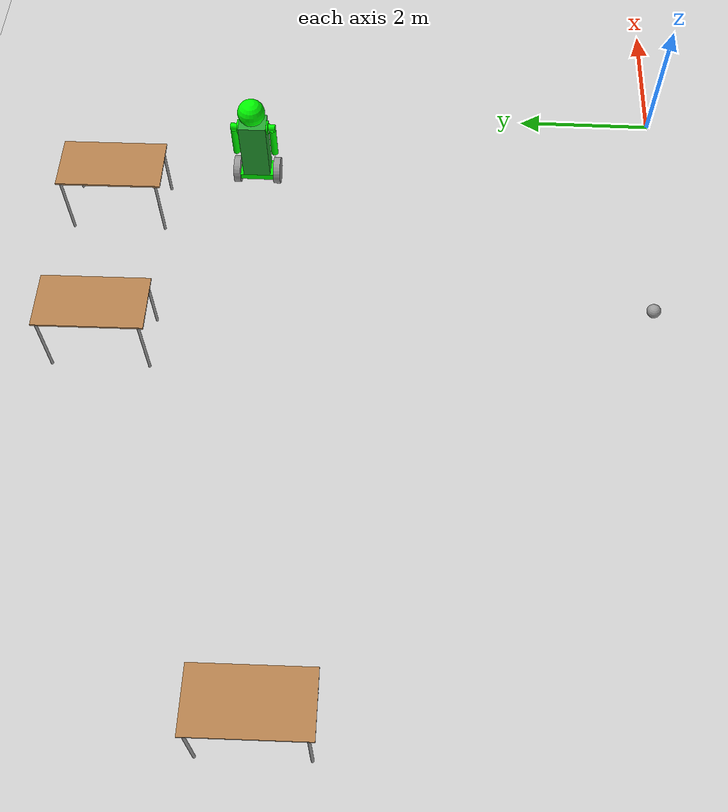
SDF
<sdf version="1.6">
 <world name="default">
  <model name="ground_plane">
   <static>1</static>
   <link name="link">
    <collision name="collision">
     <geometry><plane><normal>0 0 1</normal><size>100 100</size></plane></geometry>
     <surface>
      <contact><collide_bitmask>65535</collide_bitmask></contact>
      <friction><ode><mu>100</mu><mu2>50</mu2></ode></friction>
     </surface>
    </collision>
    <visual name="visual">
     <cast_shadows>0</cast_shadows>
     <geometry><plane><normal>0 0 1</normal><size>100 100</size></plane></geometry>
     <material>
      <script><uri>file://media/materials/scripts/gazebo.material</uri><name>Gazebo/Grey</name></script>
     </material>
    </visual>
   </link>
  </model>
  <model name="table_clone_0">
   <static>1</static>
   <link name="link">
    <collision name="surface">
     <pose>0 0 1 0 -0 0</pose>
     <geometry><box><size>1.5 0.8 0.03</size></box></geometry>
     <surface><friction><ode><mu>0.6</mu><mu2>0.6</mu2></ode></friction></surface>
    </collision>
    <visual name="visual1">
     <pose>0 0 1 0 -0 0</pose>
     <geometry><box><size>1.5 0.8 0.03</size></box></geometry>
     <material>
      <script><uri>file://media/materials/scripts/gazebo.material</uri><name>Gazebo/Wood</name></script>
     </material>
    </visual>
    <collision name="front_left_leg">
     <pose>0.68 0.38 0.5 0 -0 0</pose>
     <geometry><cylinder><radius>0.02</radius><length>1</length></cylinder></geometry>
    </collision>
    <visual name="front_left_leg">
     <pose>0.68 0.38 0.5 0 -0 0</pose>
     <geometry><cylinder><radius>0.02</radius><length>1</length></cylinder></geometry>
     <material>
      <script><uri>file://media/materials/scripts/gazebo.material</uri><name>Gazebo/Grey</name></script>
     </material>
    </visual>
    <collision name="front_right_leg">
     <pose>0.68 -0.38 0.5 0 -0 0</pose>
     <geometry><cylinder><radius>0.02</radius><length>1</length></cylinder></geometry>
    </collision>
    <visual name="front_right_leg">
     <pose>0.68 -0.38 0.5 0 -0 0</pose>
     <geometry><cylinder><radius>0.02</radius><length>1</length></cylinder></geometry>
     <material>
      <script><uri>file://media/materials/scripts/gazebo.material</uri><name>Gazebo/Grey</name></script>
     </material>
    </visual>
    <collision name="back_right_leg">
     <pose>-0.68 -0.38 0.5 0 -0 0</pose>
     <geometry><cylinder><radius>0.02</radius><length>1</length></cylinder></geometry>
    </collision>
    <visual name="back_right_leg">
     <pose>-0.68 -0.38 0.5 0 -0 0</pose>
     <geometry><cylinder><radius>0.02</radius><length>1</length></cylinder></geometry>
     <material>
      <script><uri>file://media/materials/scripts/gazebo.material</uri><name>Gazebo/Grey</name></script>
     </material>
    </visual>
    <collision name="back_left_leg">
     <pose>-0.68 0.38 0.5 0 -0 0</pose>
     <geometry><cylinder><radius>0.02</radius><length>1</length></cylinder></geometry>
    </collision>
    <visual name="back_left_leg">
     <pose>-0.68 0.38 0.5 0 -0 0</pose>
     <geometry><cylinder><radius>0.02</radius><length>1</length></cylinder></geometry>
     <material>
      <script><uri>file://media/materials/scripts/gazebo.material</uri><name>Gazebo/Grey</name></script>
     </material>
    </visual>
   </link>
   <pose>-2.00499 8.06061 0 0 -0 1.58249</pose>
  </model>
  <model name="table_clone_0_clone">
   <static>1</static>
   <link name="link">
    <collision name="surface">
     <pose>0 0 1 0 -0 0</pose>
     <geometry><box><size>1.5 0.8 0.03</size></box></geometry>
     <surface><friction><ode><mu>0.6</mu><mu2>0.6</mu2></ode></friction></surface>
    </collision>
    <visual name="visual1">
     <pose>0 0 1 0 -0 0</pose>
     <geometry><box><size>1.5 0.8 0.03</size></box></geometry>
     <material>
      <script><uri>file://media/materials/scripts/gazebo.material</uri><name>Gazebo/Wood</name></script>
     </material>
    </visual>
    <collision name="front_left_leg">
     <pose>0.68 0.38 0.5 0 -0 0</pose>
     <geometry><cylinder><radius>0.02</radius><length>1</length></cylinder></geometry>
    </collision>
    <visual name="front_left_leg">
     <pose>0.68 0.38 0.5 0 -0 0</pose>
     <geometry><cylinder><radius>0.02</radius><length>1</length></cylinder></geometry>
     <material>
      <script><uri>file://media/materials/scripts/gazebo.material</uri><name>Gazebo/Grey</name></script>
     </material>
    </visual>
    <collision name="front_right_leg">
     <pose>0.68 -0.38 0.5 0 -0 0</pose>
     <geometry><cylinder><radius>0.02</radius><length>1</length></cylinder></geometry>
    </collision>
    <visual name="front_right_leg">
     <pose>0.68 -0.38 0.5 0 -0 0</pose>
     <geometry><cylinder><radius>0.02</radius><length>1</length></cylinder></geometry>
     <material>
      <script><uri>file://media/materials/scripts/gazebo.material</uri><name>Gazebo/Grey</name></script>
     </material>
    </visual>
    <collision name="back_right_leg">
     <pose>-0.68 -0.38 0.5 0 -0 0</pose>
     <geometry><cylinder><radius>0.02</radius><length>1</length></cylinder></geometry>
    </collision>
    <visual name="back_right_leg">
     <pose>-0.68 -0.38 0.5 0 -0 0</pose>
     <geometry><cylinder><radius>0.02</radius><length>1</length></cylinder></geometry>
     <material>
      <script><uri>file://media/materials/scripts/gazebo.material</uri><name>Gazebo/Grey</name></script>
     </material>
    </visual>
    <collision name="back_left_leg">
     <pose>-0.68 0.38 0.5 0 -0 0</pose>
     <geometry><cylinder><radius>0.02</radius><length>1</length></cylinder></geometry>
    </collision>
    <visual name="back_left_leg">
     <pose>-0.68 0.38 0.5 0 -0 0</pose>
     <geometry><cylinder><radius>0.02</radius><length>1</length></cylinder></geometry>
     <material>
      <script><uri>file://media/materials/scripts/gazebo.material</uri><name>Gazebo/Grey</name></script>
     </material>
    </visual>
   </link>
   <pose>-4.39422 7.92869 0 0 -0 1.58249</pose>
  </model>
  <model name="humanoid_robot_clone">
   <link name="link_0">
    <pose>0 0 -0.1375 0 -0 0</pose>
    <inertial>
     <mass>10</mass>
     <inertia>
      <ixx>0.216667</ixx>
      <ixy>0</ixy>
      <ixz>0</ixz>
      <iyy>0.0833333</iyy>
      <iyz>0</iyz>
      <izz>0.283333</izz>
     </inertia>
    </inertial>
    <visual name="visual">
     <geometry><box><size>0.3 0.5 0.1</size></box></geometry>
     <material>
      <lighting>1</lighting>
      <script><uri>file://media/materials/scripts/gazebo.material</uri><name>Gazebo/Grey</name></script>
      <shader type="pixel"><normal_map>__default__</normal_map></shader>
      <ambient>0 1 0 1</ambient>
      <diffuse>0.7 0.7 0.7 1</diffuse>
      <specular>0.01 0.01 0.01 1</specular>
      <emissive>0 0 0 1</emissive>
     </material>
    </visual>
    <collision name="collision">
     <geometry><box><size>0.3 0.5 0.1</size></box></geometry>
     <surface>
      <friction>
       <ode><mu>1</mu><mu2>1</mu2><fdir1>0 0 0</fdir1><slip1>0</slip1><slip2>0</slip2></ode>
       <torsional>
        <coefficient>1</coefficient>
        <patch_radius>0</patch_radius>
        <surface_radius>0</surface_radius>
        <use_patch_radius>1</use_patch_radius>
        <ode><slip>0</slip></ode>
       </torsional>
      </friction>
      <bounce><restitution_coefficient>0</restitution_coefficient><threshold>1e+06</threshold></bounce>
      <contact>
       <collide_without_contact>0</collide_without_contact>
       <collide_without_contact_bitmask>1</collide_without_contact_bitmask>
       <collide_bitmask>1</collide_bitmask>
       <ode>
        <soft_cfm>0</soft_cfm>
        <soft_erp>0.2</soft_erp>
        <kp>1e+13</kp>
        <kd>1</kd>
        <max_vel>0.01</max_vel>
        <min_depth>0</min_depth>
       </ode>
       <bullet>
        <split_impulse>1</split_impulse>
        <split_impulse_penetration_threshold>-0.01</split_impulse_penetration_threshold>
        <soft_cfm>0</soft_cfm>
        <soft_erp>0.2</soft_erp>
        <kp>1e+13</kp>
        <kd>1</kd>
       </bullet>
      </contact>
     </surface>
    </collision>
   </link>
   <link name="link_0_0">
    <pose>0 0 1.1125 0 -0 0</pose>
    <inertial>
     <mass>0.25</mass>
     <inertia><ixx>0.1</ixx><ixy>0</ixy><ixz>0</ixz><iyy>0.1</iyy><iyz>0</iyz><izz>0.1</izz></inertia>
    </inertial>
    <visual name="visual">
     <geometry><sphere><radius>0.2</radius></sphere></geometry>
     <material>
      <lighting>1</lighting>
      <script><uri>file://media/materials/scripts/gazebo.material</uri><name>Gazebo/Grey</name></script>
      <shader type="pixel"><normal_map>__default__</normal_map></shader>
      <ambient>0 1 0 1</ambient>
      <diffuse>0.7 0.7 0.7 1</diffuse>
      <specular>0.01 0.01 0.01 1</specular>
      <emissive>0 0 0 1</emissive>
     </material>
    </visual>
    <collision name="collision">
     <geometry><sphere><radius>0.2</radius></sphere></geometry>
     <surface>
      <friction>
       <ode><mu>1</mu><mu2>1</mu2><fdir1>0 0 0</fdir1><slip1>0</slip1><slip2>0</slip2></ode>
       <torsional>
        <coefficient>1</coefficient>
        <patch_radius>0</patch_radius>
        <surface_radius>0</surface_radius>
        <use_patch_radius>1</use_patch_radius>
        <ode><slip>0</slip></ode>
       </torsional>
      </friction>
      <bounce><restitution_coefficient>0</restitution_coefficient><threshold>1e+06</threshold></bounce>
      <contact>
       <collide_without_contact>0</collide_without_contact>
       <collide_without_contact_bitmask>1</collide_without_contact_bitmask>
       <collide_bitmask>1</collide_bitmask>
       <ode>
        <soft_cfm>0</soft_cfm>
        <soft_erp>0.2</soft_erp>
        <kp>1e+13</kp>
        <kd>1</kd>
        <max_vel>0.01</max_vel>
        <min_depth>0</min_depth>
       </ode>
       <bullet>
        <split_impulse>1</split_impulse>
        <split_impulse_penetration_threshold>-0.01</split_impulse_penetration_threshold>
        <soft_cfm>0</soft_cfm>
        <soft_erp>0.2</soft_erp>
        <kp>1e+13</kp>
        <kd>1</kd>
       </bullet>
      </contact>
     </surface>
    </collision>
   </link>
   <link name="link_1">
    <pose>0 -0.300019 -0.137182 1.5707 -0 0</pose>
    <inertial>
     <mass>1</mass>
     <inertia><ixx>0.145833</ixx><ixy>0</ixy><ixz>0</ixz><iyy>0.145833</iyy><iyz>0</iyz><izz>0.125</izz></inertia>
    </inertial>
    <visual name="visual">
     <geometry><cylinder><radius>0.2</radius><length>0.1</length></cylinder></geometry>
     <material>
      <lighting>1</lighting>
      <script><uri>file://media/materials/scripts/gazebo.material</uri><name>Gazebo/Grey</name></script>
      <shader type="pixel"><normal_map>__default__</normal_map></shader>
      <ambient>1 1 1 1</ambient>
      <diffuse>0.7 0.7 0.7 1</diffuse>
      <specular>0.01 0.01 0.01 1</specular>
      <emissive>0 0 0 1</emissive>
     </material>
    </visual>
    <collision name="collision">
     <geometry><cylinder><radius>0.2</radius><length>0.1</length></cylinder></geometry>
     <surface>
      <friction>
       <ode><mu>1</mu><mu2>1</mu2><fdir1>0 0 0</fdir1><slip1>0</slip1><slip2>0</slip2></ode>
       <torsional>
        <coefficient>1</coefficient>
        <patch_radius>0</patch_radius>
        <surface_radius>0</surface_radius>
        <use_patch_radius>1</use_patch_radius>
        <ode><slip>0</slip></ode>
       </torsional>
      </friction>
      <bounce><restitution_coefficient>0</restitution_coefficient><threshold>1e+06</threshold></bounce>
      <contact>
       <collide_without_contact>0</collide_without_contact>
       <collide_without_contact_bitmask>1</collide_without_contact_bitmask>
       <collide_bitmask>1</collide_bitmask>
       <ode>
        <soft_cfm>0</soft_cfm>
        <soft_erp>0.2</soft_erp>
        <kp>1e+13</kp>
        <kd>1</kd>
        <max_vel>0.01</max_vel>
        <min_depth>0</min_depth>
       </ode>
       <bullet>
        <split_impulse>1</split_impulse>
        <split_impulse_penetration_threshold>-0.01</split_impulse_penetration_threshold>
        <soft_cfm>0</soft_cfm>
        <soft_erp>0.2</soft_erp>
        <kp>1e+13</kp>
        <kd>1</kd>
       </bullet>
      </contact>
     </surface>
    </collision>
   </link>
   <link name="link_1_0">
    <pose>0 -0.275033 0.812507 1.5707 -0 0</pose>
    <inertial>
     <mass>0.1</mass>
     <inertia><ixx>0.145833</ixx><ixy>0</ixy><ixz>0</ixz><iyy>0.145833</iyy><iyz>0</iyz><izz>0.125</izz></inertia>
    </inertial>
    <visual name="visual">
     <geometry><cylinder><radius>0.05</radius><length>0.1</length></cylinder></geometry>
     <material>
      <lighting>1</lighting>
      <script><uri>file://media/materials/scripts/gazebo.material</uri><name>Gazebo/Grey</name></script>
      <shader type="pixel"><normal_map>__default__</normal_map></shader>
      <ambient>0 1 0 1</ambient>
      <diffuse>0.7 0.7 0.7 1</diffuse>
      <specular>0.01 0.01 0.01 1</specular>
      <emissive>0 0 0 1</emissive>
     </material>
    </visual>
    <collision name="collision">
     <geometry><cylinder><radius>0.05</radius><length>0.1</length></cylinder></geometry>
     <surface>
      <friction>
       <ode><mu>1</mu><mu2>1</mu2><fdir1>0 0 0</fdir1><slip1>0</slip1><slip2>0</slip2></ode>
       <torsional>
        <coefficient>1</coefficient>
        <patch_radius>0</patch_radius>
        <surface_radius>0</surface_radius>
        <use_patch_radius>1</use_patch_radius>
        <ode><slip>0</slip></ode>
       </torsional>
      </friction>
      <bounce><restitution_coefficient>0</restitution_coefficient><threshold>1e+06</threshold></bounce>
      <contact>
       <collide_without_contact>0</collide_without_contact>
       <collide_without_contact_bitmask>1</collide_without_contact_bitmask>
       <collide_bitmask>1</collide_bitmask>
       <ode>
        <soft_cfm>0</soft_cfm>
        <soft_erp>0.2</soft_erp>
        <kp>1e+13</kp>
        <kd>1</kd>
        <max_vel>0.01</max_vel>
        <min_depth>0</min_depth>
       </ode>
       <bullet>
        <split_impulse>1</split_impulse>
        <split_impulse_penetration_threshold>-0.01</split_impulse_penetration_threshold>
        <soft_cfm>0</soft_cfm>
        <soft_erp>0.2</soft_erp>
        <kp>1e+13</kp>
        <kd>1</kd>
       </bullet>
      </contact>
     </surface>
    </collision>
   </link>
   <link name="link_1_0_clone">
    <pose>0 0.275024 0.812479 1.5707 -0 0</pose>
    <inertial>
     <mass>0.1</mass>
     <inertia><ixx>0.145833</ixx><ixy>0</ixy><ixz>0</ixz><iyy>0.145833</iyy><iyz>0</iyz><izz>0.125</izz></inertia>
    </inertial>
    <visual name="visual_0">
     <geometry><cylinder><radius>0.05</radius><length>0.1</length></cylinder></geometry>
     <material>
      <lighting>1</lighting>
      <script><uri>file://media/materials/scripts/gazebo.material</uri><name>Gazebo/Grey</name></script>
      <shader type="pixel"><normal_map>__default__</normal_map></shader>
      <ambient>0 1 0 1</ambient>
      <diffuse>0.7 0.7 0.7 1</diffuse>
      <specular>0.01 0.01 0.01 1</specular>
      <emissive>0 0 0 1</emissive>
     </material>
    </visual>
    <collision name="collision">
     <geometry><cylinder><radius>0.05</radius><length>0.1</length></cylinder></geometry>
     <surface>
      <friction>
       <ode><mu>1</mu><mu2>1</mu2><fdir1>0 0 0</fdir1><slip1>0</slip1><slip2>0</slip2></ode>
       <torsional>
        <coefficient>1</coefficient>
        <patch_radius>0</patch_radius>
        <surface_radius>0</surface_radius>
        <use_patch_radius>1</use_patch_radius>
        <ode><slip>0</slip></ode>
       </torsional>
      </friction>
      <bounce><restitution_coefficient>0</restitution_coefficient><threshold>1e+06</threshold></bounce>
      <contact>
       <collide_without_contact>0</collide_without_contact>
       <collide_without_contact_bitmask>1</collide_without_contact_bitmask>
       <collide_bitmask>1</collide_bitmask>
       <ode>
        <soft_cfm>0</soft_cfm>
        <soft_erp>0.2</soft_erp>
        <kp>1e+13</kp>
        <kd>1</kd>
        <max_vel>0.01</max_vel>
        <min_depth>0</min_depth>
       </ode>
       <bullet>
        <split_impulse>1</split_impulse>
        <split_impulse_penetration_threshold>-0.01</split_impulse_penetration_threshold>
        <soft_cfm>0</soft_cfm>
        <soft_erp>0.2</soft_erp>
        <kp>1e+13</kp>
        <kd>1</kd>
       </bullet>
      </contact>
     </surface>
    </collision>
   </link>
   <link name="link_1_clone">
    <pose>0 0.300019 -0.137182 1.5707 -0 0</pose>
    <inertial>
     <mass>1</mass>
     <inertia><ixx>0.145833</ixx><ixy>0</ixy><ixz>0</ixz><iyy>0.145833</iyy><iyz>0</iyz><izz>0.125</izz></inertia>
    </inertial>
    <visual name="visual">
     <geometry><cylinder><radius>0.2</radius><length>0.1</length></cylinder></geometry>
     <material>
      <lighting>1</lighting>
      <script><uri>file://media/materials/scripts/gazebo.material</uri><name>Gazebo/Grey</name></script>
      <shader type="pixel"><normal_map>__default__</normal_map></shader>
      <ambient>1 1 1 1</ambient>
      <diffuse>0.7 0.7 0.7 1</diffuse>
      <specular>0.01 0.01 0.01 1</specular>
      <emissive>0 0 0 1</emissive>
     </material>
    </visual>
    <collision name="collision">
     <geometry><cylinder><radius>0.2</radius><length>0.1</length></cylinder></geometry>
     <surface>
      <friction>
       <ode><mu>1</mu><mu2>1</mu2><fdir1>0 0 0</fdir1><slip1>0</slip1><slip2>0</slip2></ode>
       <torsional>
        <coefficient>1</coefficient>
        <patch_radius>0</patch_radius>
        <surface_radius>0</surface_radius>
        <use_patch_radius>1</use_patch_radius>
        <ode><slip>0</slip></ode>
       </torsional>
      </friction>
      <bounce><restitution_coefficient>0</restitution_coefficient><threshold>1e+06</threshold></bounce>
      <contact>
       <collide_without_contact>0</collide_without_contact>
       <collide_without_contact_bitmask>1</collide_without_contact_bitmask>
       <collide_bitmask>1</collide_bitmask>
       <ode>
        <soft_cfm>0</soft_cfm>
        <soft_erp>0.2</soft_erp>
        <kp>1e+13</kp>
        <kd>1</kd>
        <max_vel>0.01</max_vel>
        <min_depth>0</min_depth>
       </ode>
       <bullet>
        <split_impulse>1</split_impulse>
        <split_impulse_penetration_threshold>-0.01</split_impulse_penetration_threshold>
        <soft_cfm>0</soft_cfm>
        <soft_erp>0.2</soft_erp>
        <kp>1e+13</kp>
        <kd>1</kd>
       </bullet>
      </contact>
     </surface>
    </collision>
   </link>
   <link name="link_1_clone_0">
    <pose>0 -0.21251 0.812499 1.5707 -0 0</pose>
    <inertial>
     <mass>1</mass>
     <inertia><ixx>0.145833</ixx><ixy>0</ixy><ixz>0</ixz><iyy>0.145833</iyy><iyz>0</iyz><izz>0.125</izz></inertia>
    </inertial>
    <visual name="visual">
     <geometry><cylinder><radius>0.1</radius><length>0.025</length></cylinder></geometry>
     <material>
      <lighting>1</lighting>
      <script><uri>file://media/materials/scripts/gazebo.material</uri><name>Gazebo/Grey</name></script>
      <shader type="pixel"><normal_map>__default__</normal_map></shader>
      <ambient>0 1 0 1</ambient>
      <diffuse>0.7 0.7 0.7 1</diffuse>
      <specular>0.01 0.01 0.01 1</specular>
      <emissive>0 0 0 1</emissive>
     </material>
    </visual>
    <collision name="collision">
     <geometry><cylinder><radius>0.1</radius><length>0.025</length></cylinder></geometry>
     <surface>
      <friction>
       <ode><mu>1</mu><mu2>1</mu2><fdir1>0 0 0</fdir1><slip1>0</slip1><slip2>0</slip2></ode>
       <torsional>
        <coefficient>1</coefficient>
        <patch_radius>0</patch_radius>
        <surface_radius>0</surface_radius>
        <use_patch_radius>1</use_patch_radius>
        <ode><slip>0</slip></ode>
       </torsional>
      </friction>
      <bounce><restitution_coefficient>0</restitution_coefficient><threshold>1e+06</threshold></bounce>
      <contact>
       <collide_without_contact>0</collide_without_contact>
       <collide_without_contact_bitmask>1</collide_without_contact_bitmask>
       <collide_bitmask>1</collide_bitmask>
       <ode>
        <soft_cfm>0</soft_cfm>
        <soft_erp>0.2</soft_erp>
        <kp>1e+13</kp>
        <kd>1</kd>
        <max_vel>0.01</max_vel>
        <min_depth>0</min_depth>
       </ode>
       <bullet>
        <split_impulse>1</split_impulse>
        <split_impulse_penetration_threshold>-0.01</split_impulse_penetration_threshold>
        <soft_cfm>0</soft_cfm>
        <soft_erp>0.2</soft_erp>
        <kp>1e+13</kp>
        <kd>1</kd>
       </bullet>
      </contact>
     </surface>
    </collision>
   </link>
   <link name="link_1_clone_0_clone">
    <pose>0 0.21251 0.812499 1.5707 -0 0</pose>
    <inertial>
     <mass>1</mass>
     <inertia><ixx>0.145833</ixx><ixy>0</ixy><ixz>0</ixz><iyy>0.145833</iyy><iyz>0</iyz><izz>0.125</izz></inertia>
    </inertial>
    <visual name="visual">
     <geometry><cylinder><radius>0.1</radius><length>0.025</length></cylinder></geometry>
     <material>
      <lighting>1</lighting>
      <script><uri>file://media/materials/scripts/gazebo.material</uri><name>Gazebo/Grey</name></script>
      <shader type="pixel"><normal_map>__default__</normal_map></shader>
      <ambient>0 1 0 1</ambient>
      <diffuse>0.7 0.7 0.7 1</diffuse>
      <specular>0.01 0.01 0.01 1</specular>
      <emissive>0 0 0 1</emissive>
     </material>
    </visual>
    <collision name="collision">
     <geometry><cylinder><radius>0.1</radius><length>0.025</length></cylinder></geometry>
     <surface>
      <friction>
       <ode><mu>1</mu><mu2>1</mu2><fdir1>0 0 0</fdir1><slip1>0</slip1><slip2>0</slip2></ode>
       <torsional>
        <coefficient>1</coefficient>
        <patch_radius>0</patch_radius>
        <surface_radius>0</surface_radius>
        <use_patch_radius>1</use_patch_radius>
        <ode><slip>0</slip></ode>
       </torsional>
      </friction>
      <bounce><restitution_coefficient>0</restitution_coefficient><threshold>1e+06</threshold></bounce>
      <contact>
       <collide_without_contact>0</collide_without_contact>
       <collide_without_contact_bitmask>1</collide_without_contact_bitmask>
       <collide_bitmask>1</collide_bitmask>
       <ode>
        <soft_cfm>0</soft_cfm>
        <soft_erp>0.2</soft_erp>
        <kp>1e+13</kp>
        <kd>1</kd>
        <max_vel>0.01</max_vel>
        <min_depth>0</min_depth>
       </ode>
       <bullet>
        <split_impulse>1</split_impulse>
        <split_impulse_penetration_threshold>-0.01</split_impulse_penetration_threshold>
        <soft_cfm>0</soft_cfm>
        <soft_erp>0.2</soft_erp>
        <kp>1e+13</kp>
        <kd>1</kd>
       </bullet>
      </contact>
     </surface>
    </collision>
   </link>
   <link name="link_3">
    <pose>0 0 0.4125 0 -0 0</pose>
    <inertial>
     <mass>1</mass>
     <inertia>
      <ixx>0.166667</ixx>
      <ixy>0</ixy>
      <ixz>0</ixz>
      <iyy>0.166667</iyy>
      <iyz>0</iyz>
      <izz>0.166667</izz>
     </inertia>
    </inertial>
    <visual name="visual">
     <geometry><box><size>0.3 0.4 1</size></box></geometry>
     <material>
      <lighting>1</lighting>
      <script><uri>file://media/materials/scripts/gazebo.material</uri><name>Gazebo/Green</name></script>
      <shader type="pixel"><normal_map>__default__</normal_map></shader>
      <ambient>0 1 0 1</ambient>
      <diffuse>0.7 0.7 0.7 1</diffuse>
      <specular>0.01 0.01 0.01 1</specular>
      <emissive>0 0 0 1</emissive>
     </material>
    </visual>
    <collision name="collision">
     <geometry><box><size>0.3 0.4 1</size></box></geometry>
     <surface>
      <friction>
       <ode><mu>1</mu><mu2>1</mu2><fdir1>0 0 0</fdir1><slip1>0</slip1><slip2>0</slip2></ode>
       <torsional>
        <coefficient>1</coefficient>
        <patch_radius>0</patch_radius>
        <surface_radius>0</surface_radius>
        <use_patch_radius>1</use_patch_radius>
        <ode><slip>0</slip></ode>
       </torsional>
      </friction>
      <bounce><restitution_coefficient>0</restitution_coefficient><threshold>1e+06</threshold></bounce>
      <contact>
       <collide_without_contact>0</collide_without_contact>
       <collide_without_contact_bitmask>1</collide_without_contact_bitmask>
       <collide_bitmask>1</collide_bitmask>
       <ode>
        <soft_cfm>0</soft_cfm>
        <soft_erp>0.2</soft_erp>
        <kp>1e+13</kp>
        <kd>1</kd>
        <max_vel>0.01</max_vel>
        <min_depth>0</min_depth>
       </ode>
       <bullet>
        <split_impulse>1</split_impulse>
        <split_impulse_penetration_threshold>-0.01</split_impulse_penetration_threshold>
        <soft_cfm>0</soft_cfm>
        <soft_erp>0.2</soft_erp>
        <kp>1e+13</kp>
        <kd>1</kd>
       </bullet>
      </contact>
     </surface>
    </collision>
   </link>
   <link name="link_3_0">
    <pose>0 -0.285062 0.512562 0 -0 0</pose>
    <inertial>
     <mass>0.5</mass>
     <inertia><ixx>0.145833</ixx><ixy>0</ixy><ixz>0</ixz><iyy>0.145833</iyy><iyz>0</iyz><izz>0.125</izz></inertia>
    </inertial>
    <visual name="visual">
     <geometry><cylinder><radius>0.05</radius><length>0.5</length></cylinder></geometry>
     <material>
      <lighting>1</lighting>
      <script><uri>file://media/materials/scripts/gazebo.material</uri><name>Gazebo/Grey</name></script>
      <shader type="pixel"><normal_map>__default__</normal_map></shader>
      <ambient>0 1 0 1</ambient>
      <diffuse>0.7 0.7 0.7 1</diffuse>
      <specular>0.01 0.01 0.01 1</specular>
      <emissive>0 0 0 1</emissive>
     </material>
    </visual>
    <collision name="collision">
     <geometry><cylinder><radius>0.05</radius><length>0.5</length></cylinder></geometry>
     <surface>
      <friction>
       <ode><mu>1</mu><mu2>1</mu2><fdir1>0 0 0</fdir1><slip1>0</slip1><slip2>0</slip2></ode>
       <torsional>
        <coefficient>1</coefficient>
        <patch_radius>0</patch_radius>
        <surface_radius>0</surface_radius>
        <use_patch_radius>1</use_patch_radius>
        <ode><slip>0</slip></ode>
       </torsional>
      </friction>
      <bounce><restitution_coefficient>0</restitution_coefficient><threshold>1e+06</threshold></bounce>
      <contact>
       <collide_without_contact>0</collide_without_contact>
       <collide_without_contact_bitmask>1</collide_without_contact_bitmask>
       <collide_bitmask>1</collide_bitmask>
       <ode>
        <soft_cfm>0</soft_cfm>
        <soft_erp>0.2</soft_erp>
        <kp>1e+13</kp>
        <kd>1</kd>
        <max_vel>0.01</max_vel>
        <min_depth>0</min_depth>
       </ode>
       <bullet>
        <split_impulse>1</split_impulse>
        <split_impulse_penetration_threshold>-0.01</split_impulse_penetration_threshold>
        <soft_cfm>0</soft_cfm>
        <soft_erp>0.2</soft_erp>
        <kp>1e+13</kp>
        <kd>1</kd>
       </bullet>
      </contact>
     </surface>
    </collision>
   </link>
   <link name="link_3_0_clone">
    <pose>0 0.284995 0.512478 0 -0 0</pose>
    <inertial>
     <mass>0.5</mass>
     <inertia><ixx>0.145833</ixx><ixy>0</ixy><ixz>0</ixz><iyy>0.145833</iyy><iyz>0</iyz><izz>0.125</izz></inertia>
    </inertial>
    <visual name="visual_0">
     <geometry><cylinder><radius>0.05</radius><length>0.5</length></cylinder></geometry>
     <material>
      <lighting>1</lighting>
      <script><uri>file://media/materials/scripts/gazebo.material</uri><name>Gazebo/Grey</name></script>
      <shader type="pixel"><normal_map>__default__</normal_map></shader>
      <ambient>0 1 0 1</ambient>
      <diffuse>0.7 0.7 0.7 1</diffuse>
      <specular>0.01 0.01 0.01 1</specular>
      <emissive>0 0 0 1</emissive>
     </material>
    </visual>
    <collision name="collision">
     <geometry><cylinder><radius>0.05</radius><length>0.5</length></cylinder></geometry>
     <surface>
      <friction>
       <ode><mu>1</mu><mu2>1</mu2><fdir1>0 0 0</fdir1><slip1>0</slip1><slip2>0</slip2></ode>
       <torsional>
        <coefficient>1</coefficient>
        <patch_radius>0</patch_radius>
        <surface_radius>0</surface_radius>
        <use_patch_radius>1</use_patch_radius>
        <ode><slip>0</slip></ode>
       </torsional>
      </friction>
      <bounce><restitution_coefficient>0</restitution_coefficient><threshold>1e+06</threshold></bounce>
      <contact>
       <collide_without_contact>0</collide_without_contact>
       <collide_without_contact_bitmask>1</collide_without_contact_bitmask>
       <collide_bitmask>1</collide_bitmask>
       <ode>
        <soft_cfm>0</soft_cfm>
        <soft_erp>0.2</soft_erp>
        <kp>1e+13</kp>
        <kd>1</kd>
        <max_vel>0.01</max_vel>
        <min_depth>0</min_depth>
       </ode>
       <bullet>
        <split_impulse>1</split_impulse>
        <split_impulse_penetration_threshold>-0.01</split_impulse_penetration_threshold>
        <soft_cfm>0</soft_cfm>
        <soft_erp>0.2</soft_erp>
        <kp>1e+13</kp>
        <kd>1</kd>
       </bullet>
      </contact>
     </surface>
    </collision>
   </link>
   <joint name="link_0_JOINT_2" type="fixed">
    <parent>link_0</parent>
    <child>link_3</child>
    <physics>
     <ode><limit><cfm>0</cfm><erp>0.2</erp></limit><suspension><cfm>0</cfm><erp>0.2</erp></suspension></ode>
    </physics>
   </joint>
   <joint name="link_0_JOINT_3" type="revolute">
    <parent>link_0</parent>
    <child>link_1</child>
    <axis>
     <xyz>0 0 -1</xyz>
     <use_parent_model_frame>0</use_parent_model_frame>
     <limit>
      <lower>-1.79769e+308</lower>
      <upper>1.79769e+308</upper>
      <effort>-1</effort>
      <velocity>-1</velocity>
     </limit>
     <dynamics>
      <spring_reference>0</spring_reference>
      <spring_stiffness>0</spring_stiffness>
      <damping>0</damping>
     </dynamics>
    </axis>
    <physics>
     <ode><limit><cfm>0</cfm><erp>0.2</erp></limit><suspension><cfm>0</cfm><erp>0.2</erp></suspension></ode>
    </physics>
   </joint>
   <joint name="link_0_JOINT_5" type="revolute">
    <parent>link_0</parent>
    <child>link_1_clone</child>
    <axis>
     <xyz>0 0 1</xyz>
     <use_parent_model_frame>0</use_parent_model_frame>
     <limit>
      <lower>-1.79769e+308</lower>
      <upper>1.79769e+308</upper>
      <effort>-1</effort>
      <velocity>-1</velocity>
     </limit>
     <dynamics>
      <spring_reference>0</spring_reference>
      <spring_stiffness>0</spring_stiffness>
      <damping>0</damping>
     </dynamics>
    </axis>
    <physics>
     <ode><limit><cfm>0</cfm><erp>0.2</erp></limit><suspension><cfm>0</cfm><erp>0.2</erp></suspension></ode>
    </physics>
   </joint>
   <joint name="link_1_0_JOINT_16" type="fixed">
    <parent>link_1_0</parent>
    <child>link_3_0</child>
    <physics>
     <ode><limit><cfm>0</cfm><erp>0.2</erp></limit><suspension><cfm>0</cfm><erp>0.2</erp></suspension></ode>
    </physics>
   </joint>
   <joint name="link_1_0_clone_JOINT_17" type="fixed">
    <parent>link_1_0_clone</parent>
    <child>link_3_0_clone</child>
    <physics>
     <ode><limit><cfm>0</cfm><erp>0.2</erp></limit><suspension><cfm>0</cfm><erp>0.2</erp></suspension></ode>
    </physics>
   </joint>
   <joint name="link_1_clone_0_JOINT_10" type="revolute">
    <parent>link_1_clone_0</parent>
    <child>link_1_0</child>
    <axis>
     <xyz>0 0 1</xyz>
     <use_parent_model_frame>0</use_parent_model_frame>
     <limit>
      <lower>-1.79769e+308</lower>
      <upper>1.79769e+308</upper>
      <effort>50</effort>
      <velocity>-1</velocity>
     </limit>
     <dynamics>
      <spring_reference>0</spring_reference>
      <spring_stiffness>0</spring_stiffness>
      <damping>0</damping>
      <friction>0</friction>
     </dynamics>
    </axis>
    <physics>
     <ode><limit><cfm>0</cfm><erp>0.2</erp></limit><suspension><cfm>0</cfm><erp>0.2</erp></suspension></ode>
    </physics>
   </joint>
   <joint name="link_1_clone_0_clone_JOINT_0" type="revolute">
    <parent>link_1_clone_0_clone</parent>
    <child>link_1_0_clone</child>
    <axis>
     <xyz>0 0 1</xyz>
     <use_parent_model_frame>0</use_parent_model_frame>
     <limit>
      <lower>-1.79769e+308</lower>
      <upper>1.79769e+308</upper>
      <effort>50</effort>
      <velocity>-1</velocity>
     </limit>
     <dynamics>
      <spring_reference>0</spring_reference>
      <spring_stiffness>0</spring_stiffness>
      <damping>0</damping>
      <friction>0</friction>
     </dynamics>
    </axis>
    <physics>
     <ode><limit><cfm>0</cfm><erp>0.2</erp></limit><suspension><cfm>0</cfm><erp>0.2</erp></suspension></ode>
    </physics>
   </joint>
   <joint name="link_3_JOINT_2" type="fixed">
    <parent>link_3</parent>
    <child>link_1_clone_0</child>
    <physics>
     <ode><limit><cfm>0</cfm><erp>0.2</erp></limit><suspension><cfm>0</cfm><erp>0.2</erp></suspension></ode>
    </physics>
   </joint>
   <joint name="link_3_JOINT_3" type="fixed">
    <parent>link_3</parent>
    <child>link_1_clone_0_clone</child>
    <physics>
     <ode><limit><cfm>0</cfm><erp>0.2</erp></limit><suspension><cfm>0</cfm><erp>0.2</erp></suspension></ode>
    </physics>
   </joint>
   <joint name="link_3_JOINT_5" type="fixed">
    <parent>link_3</parent>
    <child>link_0_0</child>
    <physics>
     <ode><limit><cfm>0</cfm><erp>0.2</erp></limit><suspension><cfm>0</cfm><erp>0.2</erp></suspension></ode>
    </physics>
   </joint>
   <static>0</static>
   <pose>-1.32665 6.06714 0.337186 4e-06 -0 0</pose>
  </model>
  <model name="table_clone_0_clone_0">
   <static>1</static>
   <link name="link">
    <collision name="surface">
     <pose>0 0 1 0 -0 0</pose>
     <geometry><box><size>1.5 0.8 0.03</size></box></geometry>
     <surface><friction><ode><mu>0.6</mu><mu2>0.6</mu2></ode></friction></surface>
    </collision>
    <visual name="visual1">
     <pose>0 0 1 0 -0 0</pose>
     <geometry><box><size>1.5 0.8 0.03</size></box></geometry>
     <material>
      <script><uri>file://media/materials/scripts/gazebo.material</uri><name>Gazebo/Wood</name></script>
     </material>
    </visual>
    <collision name="front_left_leg">
     <pose>0.68 0.38 0.5 0 -0 0</pose>
     <geometry><cylinder><radius>0.02</radius><length>1</length></cylinder></geometry>
    </collision>
    <visual name="front_left_leg">
     <pose>0.68 0.38 0.5 0 -0 0</pose>
     <geometry><cylinder><radius>0.02</radius><length>1</length></cylinder></geometry>
     <material>
      <script><uri>file://media/materials/scripts/gazebo.material</uri><name>Gazebo/Grey</name></script>
     </material>
    </visual>
    <collision name="front_right_leg">
     <pose>0.68 -0.38 0.5 0 -0 0</pose>
     <geometry><cylinder><radius>0.02</radius><length>1</length></cylinder></geometry>
    </collision>
    <visual name="front_right_leg">
     <pose>0.68 -0.38 0.5 0 -0 0</pose>
     <geometry><cylinder><radius>0.02</radius><length>1</length></cylinder></geometry>
     <material>
      <script><uri>file://media/materials/scripts/gazebo.material</uri><name>Gazebo/Grey</name></script>
     </material>
    </visual>
    <collision name="back_right_leg">
     <pose>-0.68 -0.38 0.5 0 -0 0</pose>
     <geometry><cylinder><radius>0.02</radius><length>1</length></cylinder></geometry>
    </collision>
    <visual name="back_right_leg">
     <pose>-0.68 -0.38 0.5 0 -0 0</pose>
     <geometry><cylinder><radius>0.02</radius><length>1</length></cylinder></geometry>
     <material>
      <script><uri>file://media/materials/scripts/gazebo.material</uri><name>Gazebo/Grey</name></script>
     </material>
    </visual>
    <collision name="back_left_leg">
     <pose>-0.68 0.38 0.5 0 -0 0</pose>
     <geometry><cylinder><radius>0.02</radius><length>1</length></cylinder></geometry>
    </collision>
    <visual name="back_left_leg">
     <pose>-0.68 0.38 0.5 0 -0 0</pose>
     <geometry><cylinder><radius>0.02</radius><length>1</length></cylinder></geometry>
     <material>
      <script><uri>file://media/materials/scripts/gazebo.material</uri><name>Gazebo/Grey</name></script>
     </material>
    </visual>
   </link>
   <pose>-9.50675 5.27693 0 0 -0 1.58249</pose>
  </model>
  <model name="my_ball">
   <link name="link_0">
    <inertial>
     <mass>1</mass>
     <inertia><ixx>0.1</ixx><ixy>0</ixy><ixz>0</ixz><iyy>0.1</iyy><iyz>0</iyz><izz>0.1</izz></inertia>
    </inertial>
    <visual name="visual">
     <geometry><sphere><radius>0.1</radius></sphere></geometry>
     <material>
      <lighting>1</lighting>
      <script><uri>file://media/materials/scripts/gazebo.material</uri><name>Gazebo/Grey</name></script>
      <shader type="pixel"><normal_map>__default__</normal_map></shader>
      <ambient>1 1 1 1</ambient>
      <diffuse>1 1 1 1</diffuse>
      <specular>1 1 1 1</specular>
      <emissive>1 1 1 1</emissive>
     </material>
    </visual>
    <collision name="collision">
     <geometry><sphere><radius>0.1</radius></sphere></geometry>
     <surface>
      <friction>
       <ode><mu>1</mu><mu2>1</mu2><fdir1>0 0 0</fdir1><slip1>0</slip1><slip2>0</slip2></ode>
       <torsional>
        <coefficient>1</coefficient>
        <patch_radius>0</patch_radius>
        <surface_radius>0</surface_radius>
        <use_patch_radius>1</use_patch_radius>
        <ode><slip>0</slip></ode>
       </torsional>
      </friction>
      <bounce><restitution_coefficient>0</restitution_coefficient><threshold>1e+06</threshold></bounce>
      <contact>
       <collide_without_contact>0</collide_without_contact>
       <collide_without_contact_bitmask>1</collide_without_contact_bitmask>
       <collide_bitmask>1</collide_bitmask>
       <ode>
        <soft_cfm>0</soft_cfm>
        <soft_erp>0.2</soft_erp>
        <kp>1e+13</kp>
        <kd>1</kd>
        <max_vel>0.01</max_vel>
        <min_depth>0</min_depth>
       </ode>
       <bullet>
        <split_impulse>1</split_impulse>
        <split_impulse_penetration_threshold>-0.01</split_impulse_penetration_threshold>
        <soft_cfm>0</soft_cfm>
        <soft_erp>0.2</soft_erp>
        <kp>1e+13</kp>
        <kd>1</kd>
       </bullet>
      </contact>
     </surface>
    </collision>
   </link>
   <static>0</static>
   <pose>-3.57899 0.207529 0.1 0 -0 0</pose>
  </model>
 </world>
</sdf>
